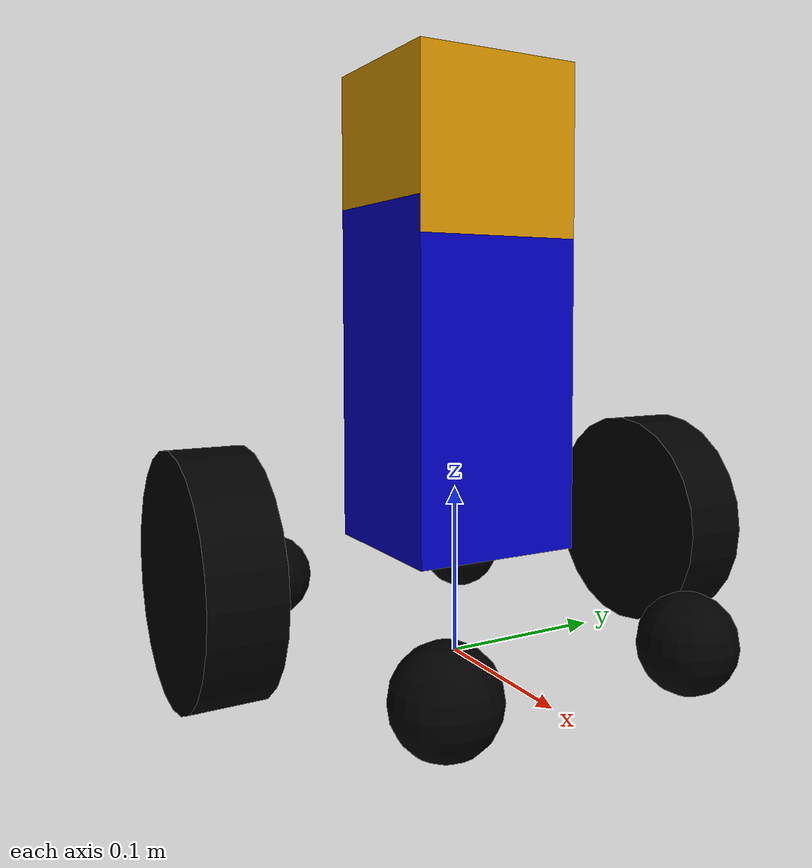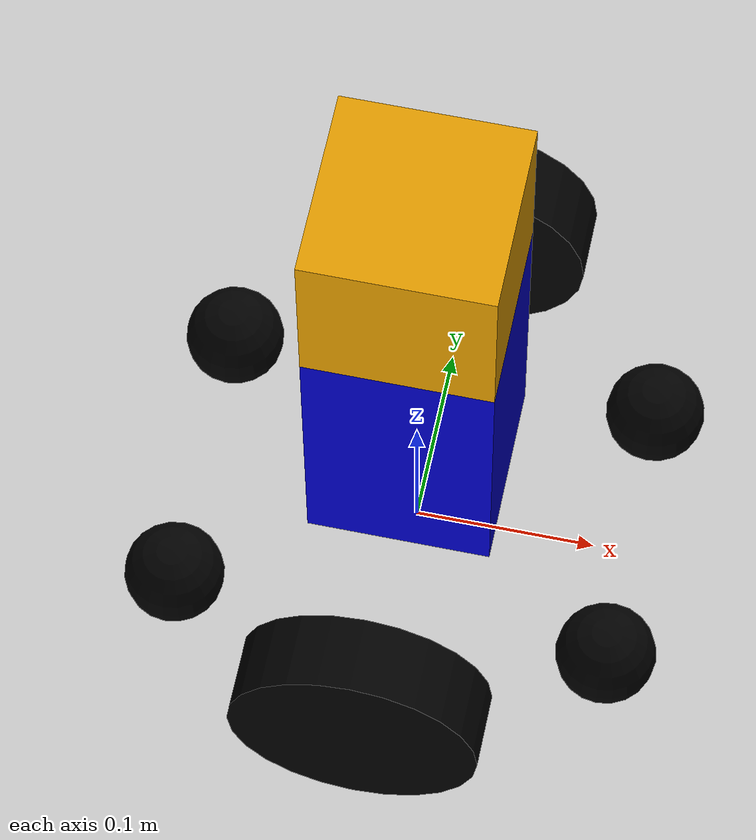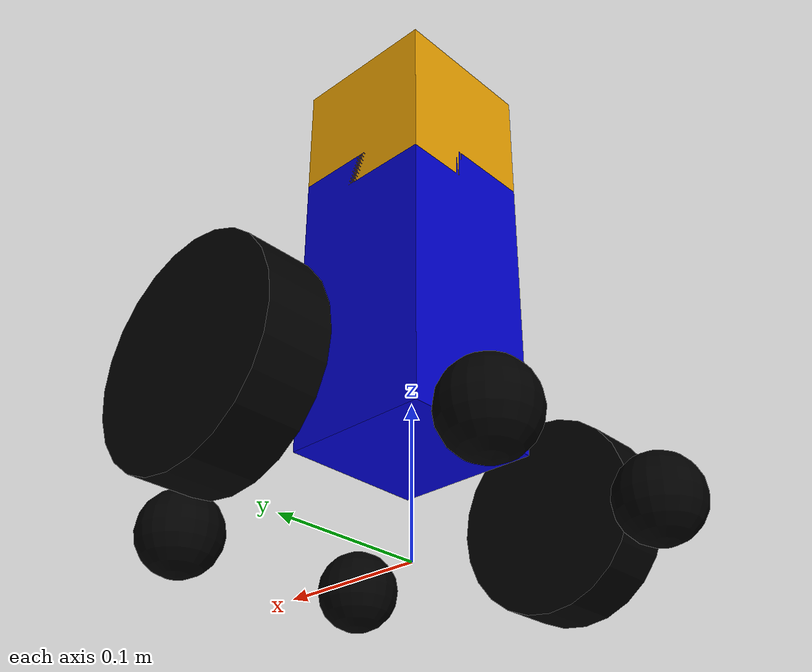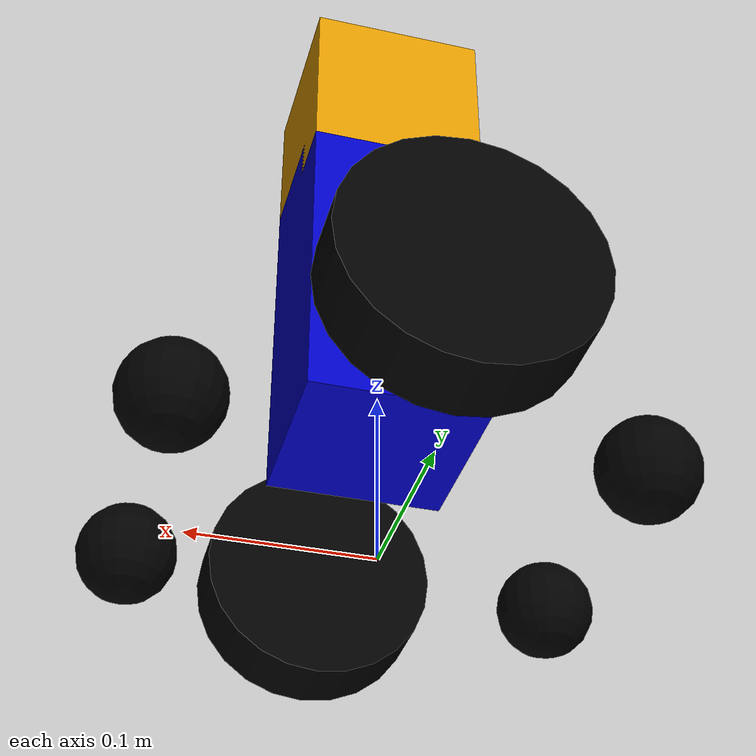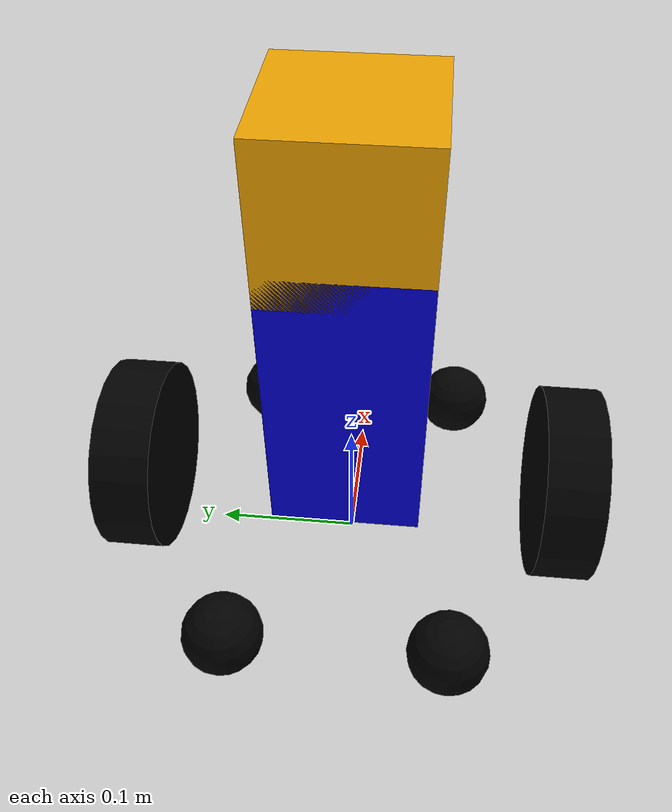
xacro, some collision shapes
<robot name="maxbot" xmlns:xacro="http://wiki.ros.org/xacro">
    <xacro:include filename="inertial_matrix.xacro" />
    <xacro:include filename="base.urdf.xacro" />
    <xacro:include filename="lidar.urdf.xacro" />
    <xacro:include filename="gazebo/move.urdf.xacro" />
    <xacro:include filename="gazebo/laser.urdf.xacro" />
</robot>

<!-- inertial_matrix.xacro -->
<robot name="base" xmlns:xacro="http://wiki.ros.org/xacro">
    <!-- Macro for inertia matrix -->
    <xacro:macro name="sphere_inertial_matrix" params="m r">
        <inertial>
            <mass value="${m}" />
            <inertia ixx="${2*m*r*r/5}" ixy="0" ixz="0"
                iyy="${2*m*r*r/5}" iyz="0"
                izz="${2*m*r*r/5}" />
        </inertial>
    </xacro:macro>
    <xacro:macro name="cylinder_inertial_matrix" params="m r h">
        <inertial>
            <mass value="${m}" />
            <inertia ixx="${m*(3*r*r+h*h)/12}" ixy = "0" ixz = "0"
                iyy="${m*(3*r*r+h*h)/12}" iyz = "0"
                izz="${m*r*r/2}" />
        </inertial>
    </xacro:macro>
    <xacro:macro name="box_inertial_matrix" params="m l w h">
        <inertial>
            <mass value="${m}" />
            <inertia ixx="${m*(h*h + l*l)/12}" ixy = "0" ixz = "0"
                   iyy="${m*(w*w + l*l)/12}" iyz= "0"
                   izz="${m*(w*w + h*h)/12}" />
        </inertial>
    </xacro:macro>
</robot>

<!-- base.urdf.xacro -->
<robot name="maxbot" xmlns:xacro="http://www.ros.org/wiki/xacro">
    <!-- source en.wikipedia.org/wiki/List_of_moments_of_inertia-->
    <material name="Red">
        <color rgba="1 0 0 1"/>
    </material>
    <material name="Green">
        <color rgba="0 1 0 1"/>
    </material>
    <material name="Blue">
        <color rgba="0 0 0.8 1"/>
    </material>
    <material name="Black">
        <color rgba="0 0 0 1"/>
    </material>
    <material name="White">
        <color rgba="1 1 1 1"/>
    </material>
    <material name="Gray">
        <color rgba="0.8 0.8 0.8 1"/>
    </material>
    <material name="Yellow">
        <color rgba="1 1 0 1"/>
    </material>
    <material name="Orange">
        <color rgba="1 0.5 0 1"/>
    </material>
    <material name="Brown">
        <color rgba="0.6 0.4 0.2 1"/>
    </material>
    <material name="Purple">
        <color rgba="0.5 0 0.5 1"/>
    </material>
    <material name="Cyan">
        <color rgba="0 1 1 1"/>
    </material>
    <!-- xacro property -->
    <xacro:property name="PI" value="3.14159265359"/>
    <xacro:property name="base_link_length" value="0.1" />
    <xacro:property name="base_link_width" value="0.1" />
    <xacro:property name="base_link_height" value="0.2" />
    <xacro:property name="base_link_mass" value="10.0" />
    <xacro:property name="wheel_radius" value="0.0675" />
    <xacro:property name="wheel_length" value="0.04" />
    <xacro:property name="wheel_spacing" value="0.15" />
    <xacro:property name="wheel_mass" value="2.0" />
    <xacro:property name="caster_wheel_radius" value="0.0275" />
    <xacro:property name="caster_wheel_spacing" value="0.24" />
    <xacro:property name="caster_wheel_mass" value="0.5" />
    <link name="base_footprint">
    </link>
    <link name="base_link">
        <visual>
            <origin rpy="0 0 0" xyz="0 0 ${base_link_height / 2}"/>
            <geometry>
                <box size="${base_link_length} ${base_link_width} ${base_link_height}"/>
            </geometry>
            <material name="Blue"/>
        </visual>
        <collision>
            <geometry>
                <box size="${base_link_length} ${base_link_width} ${base_link_height}" />
            </geometry>
            <origin xyz="0.0 0.0 ${base_link_height / 2}" rpy="0.0 0.0 0.0" />
        </collision>
        <xacro:box_inertial_matrix m="${base_link_mass}" l="${base_link_length}" w="${base_link_width}" h="${base_link_height}" />
    </link>
    <!-- gazebo -->
    <gazebo reference="base_link">
        <material>Gazebo/Blue</material>
    </gazebo>
    <joint name="base_joint" type="fixed">
        <parent link="base_footprint" />
        <child link="base_link" />
        <origin xyz="0 0 ${wheel_radius}" />
    </joint>
    <!-- macro add wheel -->
    <xacro:macro name="add_wheel" params="name flag">
        <link name="${name}_wheel">
            <visual>
                <geometry>
                    <cylinder radius="${wheel_radius}" length="${wheel_length}" />
                </geometry>
                <origin xyz="0.0 0.0 0" rpy="${PI / 2} 0.0 0.0" />
                <material name="Black" />
            </visual>
            <collision>
                <geometry>
                    <cylinder radius="${wheel_radius}" length="${wheel_length}" />
                </geometry>
                <origin xyz="0.0 0.0 0.0" rpy="${PI / 2} 0.0 0.0" />
            </collision>
            <xacro:cylinder_inertial_matrix m="${wheel_mass}" r="${wheel_radius}" h="${wheel_length}" />
        </link>
        <!-- gazebo -->
        <gazebo reference="${name}_wheel">
            <material>Gazebo/Black</material>
        </gazebo>
        <joint name="${name}_wheel_joint" type="continuous">
            <parent link="base_link" />
            <child link="${name}_wheel" />
            <origin xyz="0 ${flag * wheel_spacing} 0" />
            <axis xyz="0 1 0" />
        </joint>
    </xacro:macro>
    <xacro:add_wheel name="left" flag="1" />
    <xacro:add_wheel name="right" flag="-1" />
    <!-- macro: add caster wheel -->
    <xacro:macro name="add_caster_wheel" params="id pos_1 pos_2" >
        <link name="caster_wheel_${id}">
            <visual>
                <geometry>
                    <sphere radius="${caster_wheel_radius}" />
                </geometry>
                <origin rpy="0 0 0" xyz="0 0 0"/>
                <material name="Black" />
            </visual>
            <collision>
                <geometry>
                    <sphere radius="${caster_wheel_radius}" />
                </geometry>
                <origin xyz="0 0 0" rpy="0 0 0" />
            </collision>
            <xacro:sphere_inertial_matrix m="${caster_wheel_mass}" r="${caster_wheel_radius}" />
        </link>
        <!-- gazebo -->
        <gazebo reference="caster_wheel_${id}">
            <material>Gazebo/Black</material>
        </gazebo>
        <joint name="caster_wheel_${id}_joint" type="continuous">
            <parent link="base_link" />
            <child link="caster_wheel_${id}" />
            <origin xyz="${0.12 * pos_1} ${0.075 * pos_2} -0.04" />
        </joint>
    </xacro:macro>
    <xacro:add_caster_wheel id="1" pos_1="1" pos_2="1" />
    <xacro:add_caster_wheel id="2" pos_1="1" pos_2="-1" />
    <xacro:add_caster_wheel id="3" pos_1="-1" pos_2="1" />
    <xacro:add_caster_wheel id="4" pos_1="-1" pos_2="-1" />
</robot>

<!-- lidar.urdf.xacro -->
<robot name="maxbot" xmlns:xacro="http://wiki.ros.org/xacro">
    <xacro:property name="lidar_length" value="0.1" />
    <xacro:property name="lidar_width" value="0.1" />
    <xacro:property name="lidar_height" value="0.1" />
    <xacro:property name="lidar_mass" value="1e-5" />
    <link name="scan">
        <visual>
            <origin rpy="0 0 0" xyz="0 0 0"/>
            <geometry>
                <mesh filename="package://maxbot/meshes/hokuyo.dae"/>
            </geometry>
        </visual>
        <collision>
            <origin rpy="0 0 0" xyz="0 0 0"/>
            <geometry>
                <box size="${lidar_length} ${lidar_width} ${lidar_height}"/>
            </geometry>
        </collision>
        <xacro:box_inertial_matrix m="${lidar_mass}" l="${lidar_length}" w="${lidar_width}" h="${lidar_height}" />
    </link>
    <joint name="scan_joint" type="fixed">
        <parent link="base_link"/>
        <child link="scan"/>
        <origin rpy="0 0 0" xyz="0 0 0.23"/>
    </joint>
</robot>
